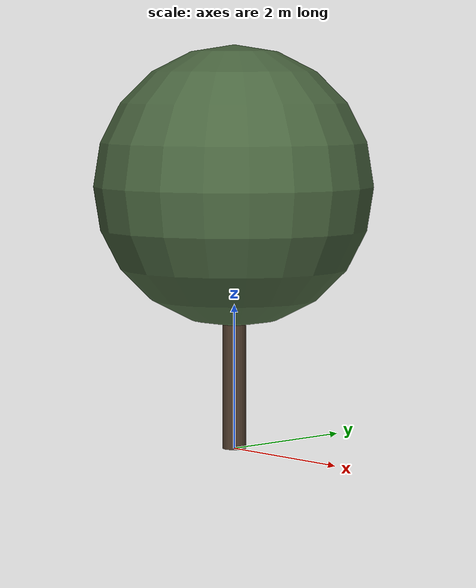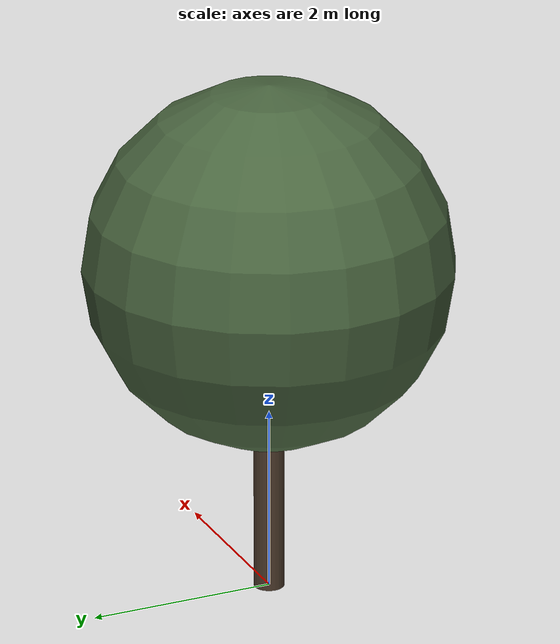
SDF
<?xml version="1.0" ?>
<sdf version="1.10">
  <model name="chene_vert_04">
    <static>true</static>

    <!-- Tronc -->
    <link name="trunk">
      <pose>0 0 1.5336721773657294 0 0 0</pose>
      <visual name="trunk_visual">
        <geometry>
          <cylinder>
            <radius>0.16409856998139633</radius>
            <length>3.0673443547314587</length>
          </cylinder>
        </geometry>
        <material>
          <ambient>0.29 0.22 0.16 1</ambient>
          <diffuse>0.29 0.22 0.16 1</diffuse>
          <specular>0.1 0.1 0.1 1</specular>
        </material>
      </visual>
      <collision name="trunk_collision">
        <geometry>
          <cylinder>
            <radius>0.16409856998139633</radius>
            <length>3.0673443547314587</length>
          </cylinder>
        </geometry>
      </collision>
    </link>

    <!-- Feuillage -->
    <link name="crown">
      <pose>0 0 3.6507371498349226 0 0 0</pose>
      <visual name="crown_visual">
        <geometry>
          <sphere>
              <radius>1.94464265034488</radius>
            </sphere>
        </geometry>
        <material>
          <ambient>0.29 0.40 0.25 1</ambient>
          <diffuse>0.29 0.40 0.25 1</diffuse>
          <specular>0.1 0.1 0.1 1</specular>
        </material>
      </visual>
      <collision name="crown_collision">
        <geometry>
          <sphere>
            <radius>1.555714120275904</radius>
          </sphere>
        </geometry>
      </collision>
    </link>

    <!-- Joint tronc-feuillage -->
    <joint name="trunk_crown_joint" type="fixed">
      <parent>trunk</parent>
      <child>crown</child>
    </joint>

  </model>
</sdf>
